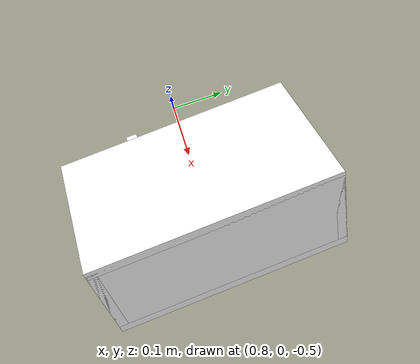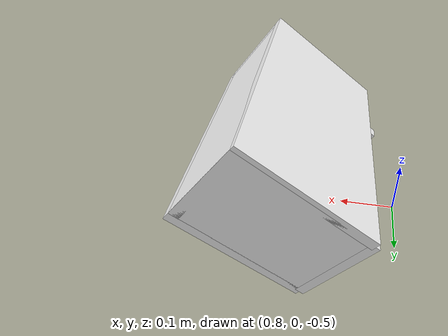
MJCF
<mujoco model="microwave">
    <compiler angle="radian" eulerseq='zxy' />
    <option gravity = "0 0 0" />
    <option>
        <flag contact = "disable"/>
    </option>
    <statistic	extent="1.0" center="0.0 0.0 0.0"/>
    <visual>
        <map fogstart="3" fogend="5" force="0.1" znear=" 0.100000 " zfar=" 12.000000 "/>
    </visual>
    <size njmax="500" nconmax="100" />
    <actuator>
        <velocity joint="bottom_left_hinge" name="viva_revolution" kv='10'/>
    </actuator>
    <asset>
        <texture builtin="flat" name="tabletex" height="32" width="32" rgb1="1 1 1" type="cube"></texture>
        <texture builtin="flat" name="objtex" height="32" width="32" rgb1="1 1 1" type="cube"></texture>
        <texture builtin="flat" name="handletex" height="32" width="32" rgb1="1 1 1" type="cube"></texture>
        <texture builtin="flat" name="wallpaper" height="32" width="32" rgb1="1 0 0" type="cube"></texture>
        <texture builtin="flat" name="kp" height="32" width="32" rgb1="1 1 1" type="cube"></texture>
        <material name="geomTable" shininess="0.03" specular="0.75" texture="tabletex"></material>
        <material name="geomObj" shininess="0.03" specular="0.75" texture="objtex"></material>
        <material name="geomHandle" shininess="0.03" specular="0.75" texture="handletex"></material>
        <material name="ax" shininess="0.03" specular="0.75" texture="wallpaper"></material>
        <material name="bg" shininess="0.03" specular="0.75" texture="wallpaper"></material>
        <material name="geomKeypad" shininess="0.03" specular="0.75" texture="kp"></material>
    </asset>
    <worldbody>
        <body name="cabinet_bottom" pos= " 1.061478 -0.004282 -0.433832 "  quat= " -0.031776 -0.335413 0.005390 0.941520" >
            <inertial pos="0 0 0" mass="1" diaginertia="1 1 1" />
            <geom size= " 0.124922 0.212496 0.008427 "  type="box" material="geomObj" name="b"/>
            <body name="cabinet_left" pos= " 0.000000 -0.204069 0.084118 " >
                <inertial pos="0 0 0" mass="1" diaginertia="1 1 1" />
                <geom size= " 0.124922 0.008427 0.084118 "  type="box" material="geomObj" name="c" />
            </body>
            <body name="cabinet_right" pos= " 0.000000 0.204069 0.084118 " >
                <inertial pos="0 0 0" mass="1" diaginertia="1 1 1" />
                <geom size= " 0.124922 0.008427 0.084118 "  type="box" material="geomObj" name="d" />
            </body>
            <body name="cabinet_top" pos= " 0.000000 0.000000 0.168236 " >
                <inertial pos="0 0 0" mass="1" diaginertia="1 1 1" />
                <geom size= " 0.124922 0.212496 0.008427 "  type="box" material="geomObj" name="e"/>
            </body>
            <body name="cabinet_back" pos= " -0.116495 0.000000 0.084118 "  >
                <inertial pos="0 0 0" mass="1" diaginertia="1 1 1" />
                <geom size= " 0.008427 0.212496 0.084118 "  type="box" material="geomObj" name="f" />
            </body>
            <body name="cabinet_keypad" pos= " 0.008427 0.158372 0.084118 " >
                <inertial pos="0 0 0" mass="1" diaginertia="1 1 1" />
                <geom size= " 0.116495 0.053124 0.075691 "  type="box" material="geomKeypad" name="keypizzlemynizzle" />
            </body>
            <body name="cabinet_left_hinge" pos= " 0.124922 -0.212496 0.084118 " >
                <inertial pos= " 0.000000 0.159372 0.000000 "  mass="1" diaginertia="1 1 1" />
                <!--joint name="bottom_left_hinge" pos="0 0 0" axis="0 0 1" limited="true" range= "-2.3 0"  /-->
                <joint name="bottom_left_hinge" pos="0 0 0" axis="0 0 1" limited="true" range= "-2.3 1.57"  />
                <geom size= " 0.008427 0.159372 0.084118 "  pos= " 0.000000 0.159372 0.000000 "  type="box" material="geomObj" name="g"/>
                <body name="handle_link" pos= " 0.010000 0.288743 0.000000 " >
                    <inertial pos="0 0 0" mass="1" diaginertia="1 1 1" />
                    <geom size= " 0.010000 0.010000 0.084118 "  type="box" material="geomHandle" name="h"/>
                </body>
            </body>
        </body>
        <body name="external_camera_body_0" pos="0.0 0 0.00" >
            <camera euler="-1.57 1.57 0.0" fovy=" 54.280851 " name="external_camera_0" pos="0.0 0 0"></camera>
            <inertial pos= " 0.00 0.0 0.000000 " mass="1" diaginertia="1 1 1" />
            <joint name="cam_j" pos="0.0 0 0" axis = "1 0 0" type="free" />
        </body>
    </worldbody>
</mujoco>
